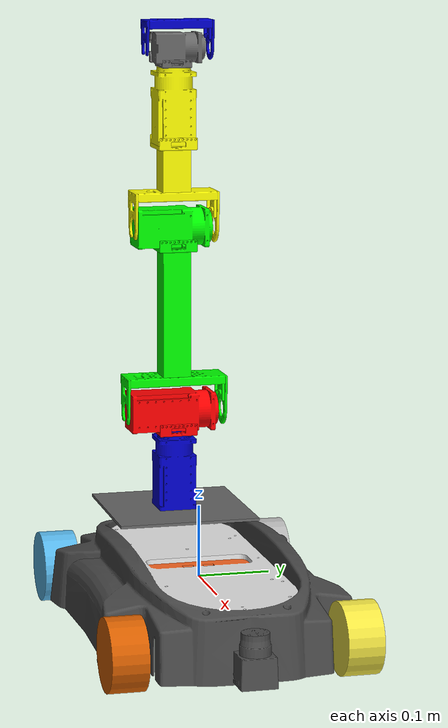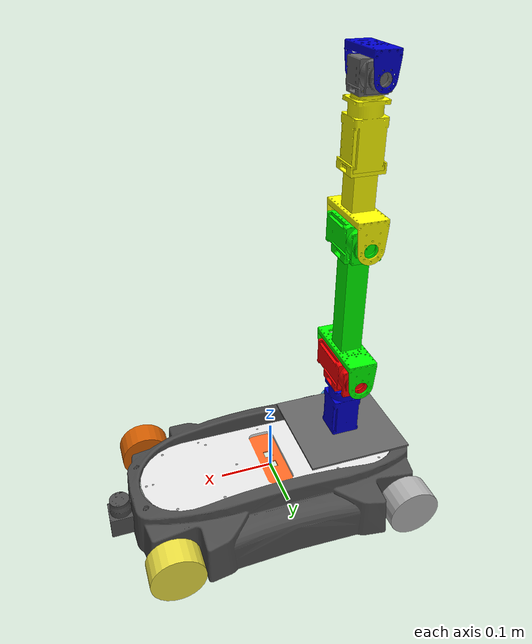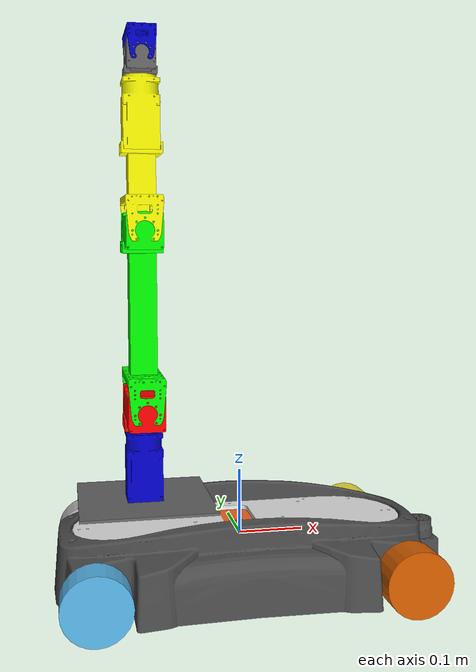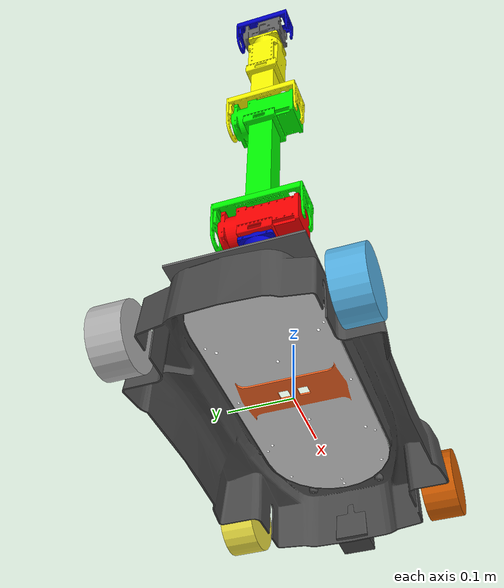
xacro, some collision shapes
<?xml version="1.0"?>
<robot name="omnigrasper"  xmlns:xacro="http://ros.org/wiki/xacro">
  <!-- common includes -->
  <xacro:include filename="$(find youbot_description)/urdf/common.xacro" />
  <xacro:include filename="$(find omni_description)/urdf/common.xacro" />
  <!-- youbot base -->
  <xacro:include filename="$(find youbot_description)/urdf/youbot_base/base.urdf.xacro" />
  <!-- omni plate -->
  <xacro:include filename="$(find omni_description)/urdf/omni_plate/plate.urdf.xacro" />
  <!-- Omnigrasper arm -->
  <xacro:include filename="$(find omni_description)/urdf/omnigrasper_arm/arm.urdf.xacro" />
  <!-- materials for visualization -->
  <xacro:include filename="$(find youbot_description)/urdf/materials.urdf.xacro" />
  <xacro:include filename="$(find omni_description)/urdf/materials.urdf.xacro" />

  <!-- Now we can start using the macros xacro:included above to define the actual robot -->

  <xacro:youbot_base name="base"/>

  <xacro:omni_plate name="plate" parent="base_link">
    <origin xyz="-0.148 0 0.061" rpy="0 0 0" />
  </xacro:omni_plate>

  <xacro:omnigrasper_arm name="arm" parent="plate_link">
    <origin xyz="0 0 0.004" rpy="0 0 0" />
  </xacro:omnigrasper_arm>
</robot>

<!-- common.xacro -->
<robot xmlns:xacro="http://ros.org/wiki/xacro">
    <xacro:property name="M_PI" value="3.1415926535897931" />

    <xacro:macro name="box_link" params="name width depth length mass color">
        <link name="${name}">
            <visual>
                <origin xyz="0 0 ${length/2.0}" rpy="0 0 0"/>
                <geometry>
                  <box size="${width} ${depth} ${length}"/>
                </geometry>
                <material name="${color}"/>
            </visual>
            <collision>
                <origin xyz="0 0 ${length/2.0}" rpy="0 0 0"/>
                <geometry>
                    <box size="${width} ${depth} ${length}"/>
                </geometry>
            </collision>
            <inertial>
                <!-- CENTER OF MASS -->
                <origin xyz="0 0 ${length/2.0}" rpy="0 0 0"/>
                <mass value="${mass}"/>
                <!-- box inertia: 1/12*m(y^2+z^2), ... -->
                <inertia ixx="${1/12*mass*(depth*depth+length*length)}" ixy="0" ixz="0" iyy="${1/12*mass*(width*width+length*length)}" iyz="0" izz="${1/12*mass*(width*width+depth*depth)}"/>
              </inertial>
          </link>
    </xacro:macro>

    <xacro:macro name="box_vci" params="name mass size_x size_y size_z xyz color">
        <!-- For Box Visual Collision Intertial -->
        <visual>
            <origin xyz="${xyz}" rpy="0 0 0"/>
            <geometry name="${name}">
              <box size="${size_x} ${size_y} ${size_z}"/>
            </geometry>
            <material name="${color}"/>
        </visual>
        <collision>
            <origin xyz="${xyz}" rpy="0 0 0"/>
            <geometry>
                <box size="${size_x} ${size_y} ${size_z}"/>
            </geometry>
        </collision>
        <inertial>
            <!-- center of mass -->
            <origin xyz="${xyz}" rpy="0 0 0"/>
            <mass value="${mass}"/>
            <!-- box inertia: 1/12*m(y^2+z^2), ... -->
            <inertia ixx="${1/12*mass*(size_y**2 + size_z**2)}" ixy="0" ixz="0"
                iyy="${1/12*mass*(size_x**2 + size_z**2)}" iyz="0"
                izz="${1/12*mass*(size_x**2 + size_y**2)}"/>
          </inertial>
    </xacro:macro>

    <xacro:macro name="box_ci" params="name mass size_x size_y size_z
        xyz color">
        <!-- For Box Collision Intertial -->
        <collision>
            <origin xyz="${xyz}" rpy="0 0 0"/>
            <geometry>
                <box size="${size_x} ${size_y} ${size_z}"/>
            </geometry>
        </collision>
        <inertial>
            <!-- center of mass -->
            <origin xyz="${xyz}" rpy="0 0 0"/>
            <mass value="${mass}"/>
            <!-- box inertia: 1/12*m(y^2+z^2), ... -->
            <inertia ixx="${1/12*mass*(size_y**2 + size_z**2)}" ixy="0" ixz="0"
                iyy="${1/12*mass*(size_x**2 + size_z**2)}" iyz="0"
                izz="${1/12*mass*(size_x**2 + size_y**2)}"/>
          </inertial>
    </xacro:macro>
</robot>

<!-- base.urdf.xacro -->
<robot name="youbot" xmlns:xacro="http://www.ros.org/wiki/xacro">

  <!-- sensors -->
  <xacro:include filename="$(find youbot_description)/urdf/sensors/hokuyo_urg04_laser.urdf.xacro"/>

  <xacro:include filename="$(find youbot_description)/urdf/youbot_base/base.gazebo.xacro" />
  <xacro:include filename="$(find youbot_description)/urdf/youbot_base/base.transmission.xacro" />

  <!-- simplified box collision geometry for base -->
  <property name="base_size_x" value="0.570" />
  <property name="base_size_y" value="0.360" />
  <property name="base_size_z" value="0.100" />
  <property name="base_mass" value="22.0" />

  <property name="caster_offset_x" value="0.228"  />
  <property name="caster_offset_y" value="0.158"  />
  <property name="caster_offset_z" value="-0.034" />
  <property name="caster_mass" value="0.1" />

  <property name="wheel_offset_x" value="0.0"  />
  <property name="wheel_offset_y" value="0.0"  />
  <property name="wheel_offset_z" value="0.0" />
  <property name="wheel_mass" value="0.4" />

  <property name="wheel_radius" value="0.05" />
  <property name="wheel_length" value="0.005" />

  <property name="caster_joint_damping" value="1.0" />
  <property name="caster_joint_friction" value="1.0" />
  <property name="caster_joint_effort" value="30" />
  <property name="caster_joint_velocity" value="10" />
  <property name="caster_joint_safety_k_velocity" value="10.0" />

  <property name="wheel_joint_damping" value="1.0" />
  <property name="wheel_joint_friction" value="1.0" />
  <property name="wheel_joint_effort" value="30" />
  <property name="wheel_joint_velocity" value="10" />
  <property name="wheel_joint_safety_k_velocity" value="10.0" />

  <xacro:macro name="youbot_base" params="name">

    <link name="${name}_footprint">
      <inertial>
        <mass value="0.0001" />
        <origin xyz="0 0 ${-base_size_z / 2.0}" rpy="0 0 0" />
        <inertia ixx="1.0" ixy="0.0" ixz="0.0" iyy="1.0" iyz="0.0" izz="1.0" />
      </inertial>
      <visual>
        <origin xyz="0 0 0" rpy="0 0 0" />
        <geometry>
          <box size="0.001 0.001 0.001" />
        </geometry>
      </visual>
      <collision>
        <origin xyz="0 0 ${-base_size_z / 2.0}" rpy="0 0 0" />
        <geometry>
          <box size="0.001 0.001 0.001" />
        </geometry>
      </collision>
    </link>

    <joint name="${name}_footprint_joint" type="fixed">
      <origin xyz="0 0 0" rpy="0 0 0" />
      <child link="${name}_link" />
      <parent link="${name}_footprint"/>
    </joint>

    <link name="${name}_link">
      <inertial>
        <mass value="${base_mass}" />
        <origin xyz="0 0 0" />
        <inertia ixx="5.652232699207" ixy="-0.009719934438" ixz="1.293988226423" iyy="5.669473158652" iyz="-0.007379583694" izz="3.683196351726" />
      </inertial>
      <visual>
        <origin xyz="0 0 0" rpy="0 0 0" />
        <geometry>
          <mesh filename="package://youbot_description/meshes/youbot_base/base.dae"/>
        </geometry>
      </visual>
      <collision>
        <origin xyz="0 0 0" rpy="0 0 0" />
        <geometry>
          <mesh filename="package://youbot_description/meshes/youbot_base/base_convex.dae"/>
        </geometry>
      </collision>
    </link>

    <!-- front left wheel -->
    <joint name="caster_joint_fl" type="fixed">
      <origin xyz="${caster_offset_x} ${caster_offset_y} ${caster_offset_z}" rpy="0 0 0" />
      <axis xyz="0 0 1" />
      <parent link="${name}_link"/>
      <child link="caster_link_fl" />
    </joint>

    <link name="caster_link_fl">
      <inertial>
        <mass value="${caster_mass}" />
        <origin xyz="0 0 0" />
        <inertia  ixx="0.012411765597" ixy="-0.000711733678" ixz="0.00050272983" iyy="0.015218160428" iyz="-0.000004273467" izz="0.011763977943" />
      </inertial>
    </link>

    <joint name="wheel_joint_fl" type="continuous">
      <axis xyz="0 1 0" />
      <limit effort="${wheel_joint_effort}" velocity="${wheel_joint_velocity}"/>
      <origin xyz="${wheel_offset_x} ${wheel_offset_y} ${wheel_offset_z}" rpy="0 0 0" />
      <parent link="caster_link_fl"/>
      <dynamics damping="${wheel_joint_damping}" friction="${wheel_joint_friction}" />
      <safety_controller k_velocity="${wheel_joint_safety_k_velocity}" />
      <child link="wheel_link_fl"/>
    </joint>

    <link name="wheel_link_fl">
      <inertial>
        <mass value="${wheel_mass}" />
        <origin xyz="0 0 0" />
        <inertia  ixx="0.012411765597" ixy="-0.000711733678" ixz="0.00050272983" iyy="0.015218160428" iyz="-0.000004273467" izz="0.011763977943" />
      </inertial>
      <visual>
        <origin xyz="0 0 0" rpy="0 0 0" />
        <geometry>
          <mesh filename="package://youbot_description/meshes/youbot_base/front-left_wheel.dae" />
        </geometry>
      </visual>
      <collision>
        <origin xyz="0 0 0" rpy="${M_PI/2} 0 0" />
        <geometry>
          <cylinder radius="${wheel_radius}" length="${wheel_radius}" />
        </geometry>
      </collision>
    </link>

    <!-- front right wheel -->
    <joint name="caster_joint_fr" type="fixed">
      <origin xyz="${caster_offset_x} ${-caster_offset_y} ${caster_offset_z}" rpy="0 0 0" />
      <axis xyz="0 0 1" />
      <parent link="${name}_link"/>
      <child link="caster_link_fr" />
    </joint>

    <link name="caster_link_fr">
      <inertial>
        <mass value="${caster_mass}" />
        <origin xyz="0 0 0" />
        <inertia  ixx="0.012411765597" ixy="-0.000711733678" ixz="0.00050272983" iyy="0.015218160428" iyz="-0.000004273467" izz="0.011763977943" />
      </inertial>
    </link>

    <joint name="wheel_joint_fr" type="continuous">
      <axis xyz="0 1 0" />
      <limit effort="${wheel_joint_effort}" velocity="${wheel_joint_velocity}"/>
      <dynamics damping="${wheel_joint_damping}" friction="${wheel_joint_friction}" />
      <safety_controller k_velocity="${wheel_joint_safety_k_velocity}" />
      <origin xyz="${wheel_offset_x} ${wheel_offset_y} ${wheel_offset_z}" rpy="0 0 0" />
      <parent link="caster_link_fr"/>
      <child link="wheel_link_fr"/>
    </joint>

    <link name="wheel_link_fr">
      <inertial>
        <mass value="${wheel_mass}" />
        <origin xyz="0 0 0" />
        <inertia  ixx="0.012411765597" ixy="-0.000711733678" ixz="0.00050272983" iyy="0.015218160428" iyz="-0.000004273467" izz="0.011763977943" />
      </inertial>
      <visual>
        <origin xyz="0 0 0" rpy="0 0 0" />
        <geometry>
          <mesh filename="package://youbot_description/meshes/youbot_base/front-right_wheel.dae" />
        </geometry>
      </visual>
      <collision>
        <origin xyz="0 0 0" rpy="${M_PI/2} 0 0" />
        <geometry>
          <cylinder radius="${wheel_radius}" length="${wheel_radius}" />
        </geometry>
      </collision>
    </link>

    <!-- back left wheel -->
    <joint name="caster_joint_bl" type="fixed">
      <origin xyz="${-caster_offset_x} ${caster_offset_y} ${caster_offset_z}" rpy="0 0 0" />
      <axis xyz="0 0 1" />
      <parent link="${name}_link"/>
      <child link="caster_link_bl" />
    </joint>

    <link name="caster_link_bl">
      <inertial>
        <mass value="${caster_mass}" />
        <origin xyz="0 0 0" />
        <inertia  ixx="0.012411765597" ixy="-0.000711733678" ixz="0.00050272983" iyy="0.015218160428" iyz="-0.000004273467" izz="0.011763977943" />
      </inertial>
    </link>

    <joint name="wheel_joint_bl" type="continuous">
      <axis xyz="0 1 0" />
      <limit effort="10" velocity="10"/>
      <limit effort="${wheel_joint_effort}" velocity="${wheel_joint_velocity}"/>
      <dynamics damping="${wheel_joint_damping}" friction="${wheel_joint_friction}" />
      <safety_controller k_velocity="${wheel_joint_safety_k_velocity}" />
      <origin xyz="${wheel_offset_x} ${wheel_offset_y} ${wheel_offset_z}" rpy="0 0 0" />
      <parent link="caster_link_bl"/>
      <child link="wheel_link_bl"/>
    </joint>

    <link name="wheel_link_bl">
      <inertial>
        <mass value="${wheel_mass}" />
        <origin xyz="0 0 0" />
        <inertia  ixx="0.012411765597" ixy="-0.000711733678" ixz="0.00050272983" iyy="0.015218160428" iyz="-0.000004273467" izz="0.011763977943" />
      </inertial>
      <visual>
        <origin xyz="0 0 0" rpy="0 0 0" />
        <geometry>
          <mesh filename="package://youbot_description/meshes/youbot_base/back-left_wheel.dae" />
        </geometry>
      </visual>
      <collision>
        <origin xyz="0 0 0" rpy="${M_PI/2} 0 0" />
        <geometry>
          <cylinder radius="${wheel_radius}" length="${wheel_radius}" />
        </geometry>
      </collision>
    </link>

    <!-- back right wheel -->
    <joint name="caster_joint_br" type="fixed">
      <origin xyz="${-caster_offset_x} ${-caster_offset_y} ${caster_offset_z}" rpy="0 0 0" />
      <axis xyz="0 0 1" />
      <parent link="${name}_link"/>
      <child link="caster_link_br" />
    </joint>

    <link name="caster_link_br">
      <inertial>
        <mass value="${caster_mass}" />
        <origin xyz="0 0 0" />
        <inertia  ixx="0.012411765597" ixy="-0.000711733678" ixz="0.00050272983" iyy="0.015218160428" iyz="-0.000004273467" izz="0.011763977943" />
      </inertial>
    </link>

    <joint name="wheel_joint_br" type="continuous">
      <axis xyz="0 1 0" />
      <limit effort="${wheel_joint_effort}" velocity="${wheel_joint_velocity}"/>
      <dynamics damping="${wheel_joint_damping}" friction="${wheel_joint_friction}" />
      <safety_controller k_velocity="${wheel_joint_safety_k_velocity}" />
      <origin xyz="${wheel_offset_x} ${wheel_offset_y} ${wheel_offset_z}" rpy="0 0 0" />
      <parent link="caster_link_br"/>
      <child link="wheel_link_br"/>
    </joint>

    <link name="wheel_link_br">
      <inertial>
        <mass value="${wheel_mass}" />
        <origin xyz="0 0 0" />
        <inertia  ixx="0.012411765597" ixy="-0.000711733678" ixz="0.00050272983" iyy="0.015218160428" iyz="-0.000004273467" izz="0.011763977943" />
      </inertial>
      <visual>
        <origin xyz="0 0 0" rpy="0 0 0" />
        <geometry>
          <mesh filename="package://youbot_description/meshes/youbot_base/back-right_wheel.dae" />
        </geometry>
      </visual>
      <collision>
        <origin xyz="0 0 0" rpy="${M_PI/2} 0 0" />
        <geometry>
          <cylinder radius="${wheel_radius}" length="${wheel_radius}" />
        </geometry>
      </collision>
    </link>

    <!-- base laser front -->

    <xacro:hokuyo_urg04_laser name="${name}_laser_front" parent="${name}" ros_topic="scan_front" update_rate="10" min_angle="-1.57" max_angle="1.57" >
      <origin xyz="0.3 0 -0.03" rpy="${M_PI} ${M_PI} ${M_PI}" />
    </xacro:hokuyo_urg04_laser>

    <!-- extensions -->
    <xacro:youbot_base_gazebo />
    <xacro:youbot_base_transmission />

  </xacro:macro>

</robot>

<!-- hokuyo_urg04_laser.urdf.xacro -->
<robot name="youbot" xmlns:xacro="http://ros.org/wiki/xacro">

  <xacro:include filename="$(find youbot_description)/urdf/sensors/hokuyo_urg04_laser.gazebo.xacro" />

  <xacro:macro name="hokuyo_urg04_laser" params="name parent *origin ros_topic update_rate min_angle max_angle">
    <joint name="${name}_hokuyo_urg04_laser_joint" type="fixed">
      <axis xyz="0 1 0" />
      <insert_block name="origin" />
      <parent link="${parent}_link"/>
      <child link="${name}_link"/>
    </joint>
    <link name="${name}_link" type="laser">
      <inertial>
        <mass value="0.16" />
        <origin xyz="0 0 0" rpy="0 0 0" />
        <inertia ixx="0.1" ixy="0" ixz="0" iyy="0.1" iyz="0" izz="0.1" />
      </inertial>
      <visual>
      	<origin xyz="0 0 0" rpy="0 0 0" />
       <geometry>
        <mesh filename="package://youbot_description/meshes/sensors/hokuyo.dae" />
      </geometry>
      <material name="DarkGrey" />
    </visual>

    <collision>
      <origin xyz="0 0 0" rpy="0 0 0" />
      <geometry>
       <mesh filename="package://youbot_description/meshes/sensors/hokuyo_convex.dae" />

     </geometry>
   </collision>
 </link>
 <!-- gazebo extensions -->
 <xacro:hokuyo_urg04_laser_gazebo name="${name}" ros_topic="${ros_topic}" update_rate="${update_rate}" min_angle="${min_angle}" max_angle="${max_angle}" />
</xacro:macro>
</robot>

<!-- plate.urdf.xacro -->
<robot xmlns:xacro="http://ros.org/wiki/xacro">
  <!-- XACRO MACRO FOR OUR PLATE -->
  <xacro:macro name="omni_plate" params="parent name *origin">

    <!-- joint between base_link and plate_link -->
    <joint name="${name}_joint" type="fixed" >
      <xacro:insert_block name="origin" />
      <parent link="${parent}" />
      <child link="${name}_link" />
    </joint>

    <xacro:box_link name="${name}_link" width="0.2" depth="0.2" length="0.004" mass="0.5" color="omni/DarkGrey"/>
    <!-- END OF OUR PLATE -->
  </xacro:macro>
</robot>

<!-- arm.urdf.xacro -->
<robot name="omnigrasper" xmlns:xacro="http://ros.org/wiki/xacro">

    <!-- Xacro macro for the arm -->
    <xacro:macro name="omnigrasper_arm" params="parent name *origin">
        <joint name="${parent}_${name}_base" type="fixed">
            <parent link="${parent}"/>
            <child link="${name}_base"/>
            <xacro:insert_block name="origin"/>
        </joint>
        <link name="${name}_base"/>

        <joint name="${name}_base_arm_0" type="fixed">
            <parent link="${name}_base"/>
            <child link="arm_0"/>
            <origin xyz="0 0 0.141"/>
        </joint>
        <link name="arm_0">
            <visual>
                <origin xyz="0 0 ${-0.001*(54/2+6+108)}" rpy="${M_PI/2} 0 0"/>
                <geometry>
                    <mesh filename="package://omni_description/stl/L54-30-S500-R.STL" scale="0.001 0.001 0.001"/>
                </geometry>
                <material name="omni/Blue"/>
            </visual>
            <collision>
                <origin xyz="0 0 ${-0.001*(54/2+6+108/2)}" rpy="0 0 0"/>
                <geometry>
                    <box size="0.054 0.054 0.108"/>
                </geometry>
            </collision>
        </link>

        <joint name="arm_0_1" type="revolute">
            <parent link="arm_0"/>
            <child link="arm_1"/>
            <limit effort="2.5" velocity="${28.7*M_PI/30}"
                lower="${-M_PI}" upper="${M_PI}"/>
            <safety_controller k_position="3"
                k_velocity="1000"
                soft_lower_limit="${-M_PI}"
                soft_upper_limit="${M_PI}" />
            <origin rpy="0 0 0" xyz="0 0 0"/>
            <axis xyz="0 0 1"/>
        </joint>
        <link name="arm_1">
            <!-- TODO Parts to add : frame adaptor FRP54-A110K, idler FRP54-I110 -->
            <xacro:box_ci name="H54-200-S500" mass="0.855"
                size_x="0.054" size_y="0.132" size_z="0.054"
                xyz="0 0 0" color="omni/Red"/>

            <visual>
                <origin xyz="0 ${-0.132/2} 0"/>
                <geometry>
                    <mesh filename="package://omni_description/stl/H54-200-S500-R.STL" scale="0.001 0.001 0.001"/>
                </geometry>
                <material name="omni/Red"/>
            </visual>

            <!-- FRP54-A110 -->
            <visual>
                <origin xyz="0 0 ${-0.054/2-0.006}" rpy="${M_PI/2} 0 0"/>
                <geometry>
                    <mesh filename="package://omni_description/stl/FRP54-A110.STL" scale="0.001 0.001 0.001"/>
                </geometry>
                <material name="omni/Red"/>
            </visual>
        </link>

        <joint name="arm_1_2" type="revolute">
            <parent link="arm_1"/>
            <child link="arm_2"/>
            <limit effort="44.7" velocity="${33.1*M_PI/30}"
                lower="${1.34-M_PI}" upper="${4.94-M_PI}"/>
            <safety_controller k_position="3"
                k_velocity="1000"
                soft_lower_limit="${(1.34-M_PI)}"
                soft_upper_limit="${(4.94-M_PI)}" />
            <origin rpy="${M_PI/2} ${-M_PI/2} 0" xyz="0 0 0"/>
            <axis xyz="0 0 1"/>
        </joint>
        <link name="arm_2">
            <!-- TODO Parts to add : idler FRP54-I110 -->
            <!-- TODO: take the moments of inertia provided by manufacturer -->
            <xacro:box_vci name="profile_2" mass="${1.38*0.180}"
                size_x="0.180" size_y="0.040" size_z="0.040"
                xyz="${0.001*(51+180/2)} 0 0" color="omni/Green"/>
            <!-- FRP54-H220 -->
            <visual>
                <origin xyz="0 0 0" rpy="0 ${M_PI} ${-M_PI/2}"/>
                <geometry>
                    <mesh filename="package://omni_description/stl/FRP54-H220.STL" scale="0.001 0.001 0.001"/>
                </geometry>
                <material name="omni/Green"/>
            </visual>
            <!-- FRP54-A110 -->
            <visual>
                <origin xyz="${0.001*(51 + 180)} 0 0" rpy="0 0 ${-M_PI/2}"/>
                <geometry>
                    <mesh filename="package://omni_description/stl/FRP54-A110.STL" scale="0.001 0.001 0.001"/>
                </geometry>
                <material name="omni/Green"/>
            </visual>
        </link>

        <joint name="arm_2_sub" type="fixed">
            <parent link="arm_2"/>
            <child link="arm_2_sub"/>
            <origin xyz="0 0 0"/>
        </joint>
        <link name="arm_2_sub">
            -
            <xacro:box_ci name="L54_50_S500" mass="0.662"
                size_x="0.054" size_y="0.054" size_z="0.114"
                xyz="${0.001*(51+180+6+54/2)} 0 0" color="omni/Green"/>
            <visual>
                <origin xyz="${0.001*(51+180+6+54/2)} 0 ${0.114/2}"
                    rpy="${-M_PI/2} 0 0"/>
                <geometry>
                    <mesh filename="package://omni_description/stl/L54-50-S500-R.STL" scale="0.001 0.001 0.001"/>
                </geometry>
                <material name="omni/Green"/>
            </visual>
        </link>

        <joint name="arm_2_3" type="revolute">
            <parent link="arm_2"/>
            <child link="arm_3"/>
            <limit effort="14" velocity="${16*M_PI/30}"
                lower="${1.32-M_PI}" upper="${4.40-M_PI}"/>
            <safety_controller k_position="3"
                k_velocity="1000"
                soft_lower_limit="${(1.32-M_PI)}"
                soft_upper_limit="${(4.50-M_PI)}" />
            <origin rpy="0 0 ${-M_PI/2}" xyz="0.264 0 0"/>
            <axis xyz="0 0 1"/>
        </joint>
        <link name="arm_3">
            <!-- TODO Parts to add : idler FRP54-I110 -->
            <!-- TODO: take the moments of inertia provided by manufacturer -->
            <xacro:box_vci name="profile_3" mass="${1.38*0.060}"
                size_x="0.040" size_y="0.060" size_z="0.040"
                xyz="0 ${0.001*(51+60/2)} 0" color="omni/Yellow"/>
            <!-- FRP54-H120 -->
            <visual>
                <origin xyz="0 0 0" rpy="0 ${M_PI} 0"/>
                <geometry>
                    <mesh filename="package://omni_description/stl/FRP54-H120.STL" scale="0.001 0.001 0.001"/>
                </geometry>
                <material name="omni/Yellow"/>
            </visual>
            <!-- FRP54-A110 -->
            <visual>
                <origin xyz="0 ${0.001*(51+60)} 0" rpy="0 0 0"/>
                <geometry>
                    <mesh filename="package://omni_description/stl/FRP54-A110.STL" scale="0.001 0.001 0.001"/>
                </geometry>
                <material name="omni/Yellow"/>
            </visual>
        </link>

        <joint name="arm_3_sub" type="fixed">
            <parent link="arm_3"/>
            <child link="arm_3_sub"/>
            <origin xyz="0 0 0"/>
        </joint>
        <link name="arm_3_sub">
            <xacro:box_ci name="L54_30_S500" mass="0.612"
                size_x="0.054" size_y="0.108" size_z="0.054"
                xyz="0 ${0.001*(51+60+6+108/2)} 0" color="omni/Yellow"/>
            <visual>
                <origin xyz="0 ${0.001*(51+60+6)} 0" rpy="0 ${-M_PI} 0"/>
                <geometry>
                    <mesh filename="package://omni_description/stl/L54-30-S500-R.STL" scale="0.001 0.001 0.001"/>
                </geometry>
                <material name="omni/Yellow"/>
            </visual>
        </link>

        <joint name="arm_3_4" type="revolute">
            <parent link="arm_3"/>
            <child link="arm_4"/>
            <limit effort="2.5" velocity="${28.7*M_PI/30}"
                lower="${-M_PI}" upper="${M_PI}"/>
            <safety_controller k_position="3"
                k_velocity="1000"
                soft_lower_limit="${-M_PI}"
                soft_upper_limit="${M_PI}" />
            <origin rpy="${-M_PI/2} 0 0" xyz="0 0.252 0"/>
            <axis xyz="0 0 1"/>
        </joint>
        <link name="arm_4">
            <!-- TODO Parts to add : idler FRP42-I110 -->
            <xacro:box_ci name="L42_10_S300" mass="0.257"
                size_x="0.042" size_y="0.072" size_z="0.042"
                xyz="0 0.006 0" color="omni/DarkGrey"/>
            <visual>
                <origin xyz="0 ${-0.072/2 + 0.006} 0" rpy="0 0 0"/>
                <geometry>
                    <mesh filename="package://omni_description/stl/L42-10-S300-R.STL" scale="0.001 0.001 0.001"/>
                </geometry>
                <material name="omni/DarkGrey"/>
            </visual>
            <!-- FRP42-A110 -->
            <visual>
                <origin xyz="0 0 ${-0.001*(42/2+6)}" rpy="${M_PI/2} 0 0"/>
                <geometry>
                    <mesh filename="package://omni_description/stl/FRP42-A110.STL" scale="0.001 0.001 0.001"/>
                </geometry>
                <material name="omni/DarkGrey"/>
            </visual>
        </link>

        <joint name="arm_4_5" type="revolute">
            <parent link="arm_4"/>
            <child link="arm_5"/>
            <limit effort="1.2" velocity="${29.7*M_PI/30}"
                lower="${-M_PI/2+M_PI/5}" upper="${M_PI/2-M_PI/5}"/>
            <safety_controller k_position="2"
                k_velocity="1000"
                soft_lower_limit="${-M_PI/2+M_PI/5}"
                soft_upper_limit="${M_PI/2-M_PI/5}" />
            <origin rpy="${M_PI/2} 0 0" xyz="0 0 0"/>
            <axis xyz="0 0 1"/>
        </joint>
        <link name="arm_5">
            <!-- FIXME: The weight is made up, as well as the center of mass -->
            <xacro:box_ci name="L42_10_S300" mass="0.0857"
                size_x="0.042" size_y="0.006" size_z="0.082"
                xyz="0 0.039 -0.006" color="omni/Blue"/>
            <!-- FRP42-H120 -->
            <visual>
                <origin xyz="0 0 -0.006" rpy="0 0 0"/>
                <geometry>
                    <mesh filename="package://omni_description/stl/FRP42-H120.STL" scale="0.001 0.001 0.001"/>
                </geometry>
                <material name="omni/Blue"/>
            </visual>
        </link>

        <joint name="arm_5_end" type="fixed">
            <parent link="arm_5"/>
            <child link="arm_link"/>
            <origin xyz="0 0.039 -0.006"/>
        </joint>
        <link name="arm_link"/>

        <joint name="arm_end_versaball" type="fixed">
            <parent link="arm_link"/>
            <child link="versaball_link"/>
            <origin rpy="${-M_PI/2} 0 0" xyz="0 0.081 0"/>
        </joint>
        <link name="versaball_link"/>
    </xacro:macro>
    <!-- end of arm links/joints -->
</robot>

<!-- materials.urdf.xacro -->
<robot>
  <material name="omni/Blue">
    <color rgba="0 0 0.8 1"/>
  </material>

  <material name="omni/Red">
    <color rgba="1 0 0 1"/>
  </material>

  <material name="omni/Green">
    <color rgba="0 1 0 1"/>
  </material>

  <material name="omni/Yellow">
    <color rgba="1 1 0 1"/>
  </material>

  <material name="omni/LightGrey">
    <color rgba="0.6 0.6 0.6 1"/>
  </material>

  <material name="omni/DarkGrey">
    <color rgba="0.4 0.4 0.4 1"/>
  </material>
</robot>
